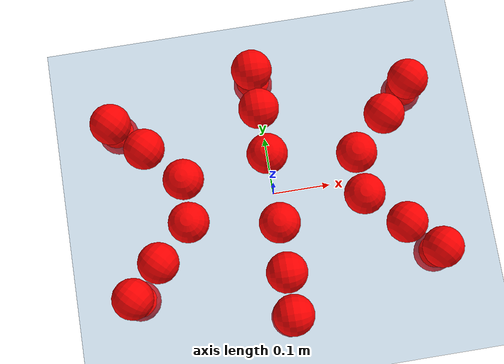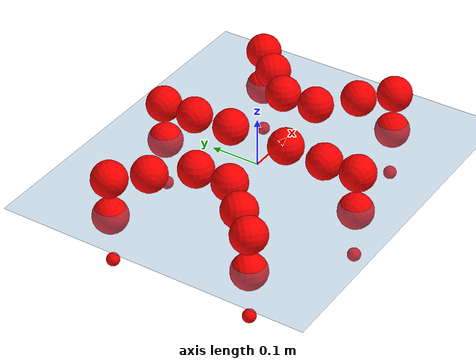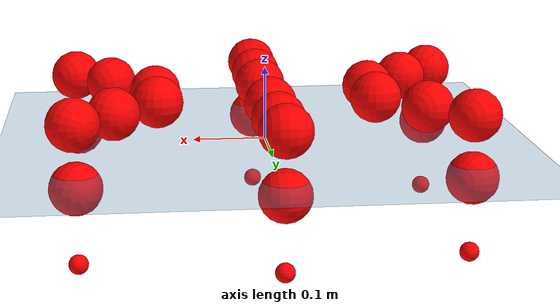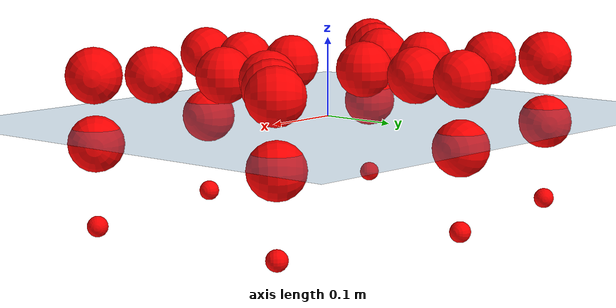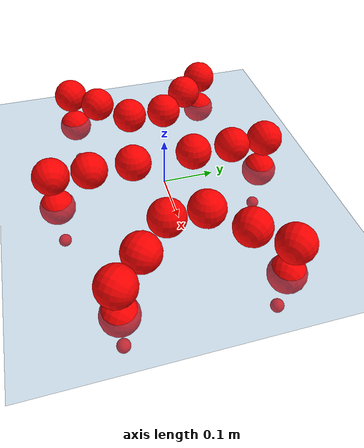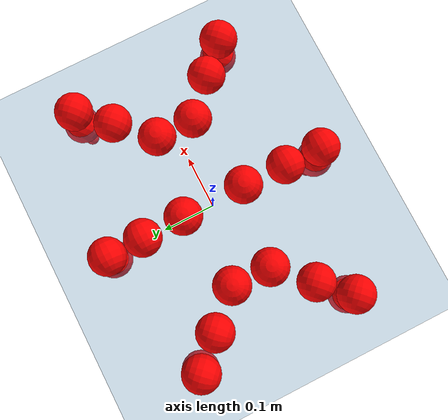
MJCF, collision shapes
<mujoco model="Golem">
  <compiler angle="radian" assetdir="assets" balanceinertia="true" inertiafromgeom="false"/>

  <option timestep="0.005" density="1.2" viscosity="2e-05"/>

  <size nkey="1"/>

  <visual>
    <quality shadowsize="8192"/>
    <map shadowclip="0.5"/>
  </visual>

  <default>
    <default class="/">
      <joint armature="0.01" damping="0.01" frictionloss="0.01"/>
      <geom contype="0" conaffinity="0" group="1" solref="-1000 -80"/>
      <site size="0.01 0.005 0.005" group="5"/>
      <general forcelimited="true" biastype="affine" gainprm="25" biasprm="0 -25 -0.5"/>
      <default class="visual">
        <geom type="mesh" group="2"/>
      </default>
      <default class="collision">
        <geom group="3"/>
      </default>
      <default class="foot">
        <geom size="0.01 0 0" condim="6" group="4" priority="1" solimp="0.015 1 0.01"/>
      </default>
      <default class="reward_collision_sphere">
        <geom group="5" rgba="1 0 0 1"/>
      </default>
    </default>
  </default>

  <asset>
    <texture type="skybox" colorspace="auto" name="//unnamed_texture_0" builtin="gradient" rgb1="0.95 0.95 0.95" rgb2="0.95 0.95 0.95" width="100" height="600"/>
    <texture type="2d" colorspace="auto" name="texplane" builtin="checker" rgb1="0.345 0.575 0.748" rgb2="0.345 0.575 0.748" markrgb="1 1 1" width="512" height="512"/>
    <material name="MatPlane" class="/" texture="texplane" texuniform="true" texrepeat="2 2" specular="0.9"/>
    <mesh name="body" class="/" file="body.stl" scale="0.001 0.001 0.001"/>
    <mesh name="coxa" class="/" file="coxa.stl" scale="0.001 0.001 0.001"/>
    <mesh name="femur" class="/" file="femur.stl" scale="0.001 0.001 0.001"/>
    <mesh name="tibia" class="/" file="tibia.stl" scale="0.001 0.001 0.001"/>
    <mesh name="tarsus" class="/" file="tarsus.stl" scale="0.001 0.001 0.001"/>
  </asset>

  <worldbody>
    <geom name="floor" class="/" size="100 100 0.125" type="plane" group="0" material="MatPlane"/>
    <light name="toplight_shadow" class="/" pos="0 0 5" dir="0.0990148 0.0990148 -0.990148" type="directional" ambient="0.04 0.04 0.04" diffuse="0.55 0.55 0.55" specular="0.12 0.12 0.12"/>
    <light name="toplight_fill" class="/" pos="0 0 5" dir="0.0990148 0.0990148 -0.990148" type="directional" castshadow="false" ambient="0.04 0.04 0.04" diffuse="0.3 0.3 0.3" specular="0.08 0.08 0.08"/>
    <body name="trunk" pos="0.000289483 2.53768e-05 -0.0011742" quat="1 0.000123453 -2.2184e-05 0.000459945">
      <inertial pos="0.000121862 -0.000173734 -0.0043492" quat="0.999988 0.000273345 0.00433237 -0.00217177" mass="2.51028" diaginertia="0.00776768 0.00136406 0.0102944"/>
      <joint name="//unnamed_joint_0" type="free"/>
      <geom name="//unnamed_geom_1" class="/" pos="0 0 0.0643094" quat="1 0 0 0" type="mesh" rgba="0.9 0.9 0.9 1" mesh="body"/>
      <site name="imu" class="/" pos="0.128246 -0.000465525 0.103483" size="0.00874238"/>
      <camera name="track" class="/" pos="0 -1.33757 0" quat="0.707107 0.707107 0 0" mode="trackcom"/>
      <camera name="ego_camera" class="/" pos="0.123382 0 0.100483" quat="-0.5 -0.5 0.5 0.5"/>
      <body name="coxa_RR" pos="-0.16964 -0.056367 0.0647993" quat="0.3833 9.24708e-05 0.000631619 -0.923624">
        <inertial pos="-0.00158793 0.000575612 0.00104748" quat="0.999994 -0.000946506 -0.00263343 0.00187918" mass="0.132511" diaginertia="0.00772902 0.00135124 0.0100734"/>
        <joint name="coxa_joint_RR" class="/" pos="0 0 0" axis="-2.08466e-05 2.29943e-05 -1" range="-3.11965 3.14409" armature="0.00899647" damping="0.00889292" frictionloss="0.00904525"/>
        <geom name="//unnamed_geom_2" class="/" type="mesh" rgba="0.2 0.2 0.2 1" mesh="coxa"/>
        <geom name="//unnamed_geom_3" class="reward_collision_sphere" size="0.0349695" pos="-0.0284728 0 0"/>
        <body name="femur_RR" pos="0.0552627 -0.000390857 -0.00049279" quat="0.499905 -0.499956 0.500307 0.499832">
          <inertial pos="-0.000420982 0.000768872 0.00106512" quat="1 -4.66876e-05 2.08199e-05 -6.19111e-05" mass="0.133533" diaginertia="0.00772001 0.00133918 0.0100615"/>
          <joint name="femur_joint_RR" class="/" pos="0 0 0" axis="-0.00190238 -0.00093703 -0.999998" range="-3.15081 3.13775" armature="0.00914059" damping="0.00459789" frictionloss="0.00904113"/>
          <geom name="//unnamed_geom_4" class="/" type="mesh" rgba="0.9 0.9 0.9 1" mesh="femur"/>
          <geom name="//unnamed_geom_5" class="reward_collision_sphere" size="0.0349695"/>
          <body name="tibia_RR" pos="0.000499506 -0.0719208 0.00139776" quat="1.8243e-05 1 -1.96858e-05 2.42993e-05">
            <inertial pos="0.000962167 0.00102645 -0.00115865" quat="0.999993 0.00113839 0.0014764 -0.00334042" mass="0.134558" diaginertia="0.00773514 0.0013478 0.0103866"/>
            <joint name="tibia_joint_RR" class="/" pos="0 0 0" axis="5.89677e-05 3.53523e-05 1" range="-3.13817 3.14162" armature="0.00886361" damping="0" frictionloss="0.00897073"/>
            <geom name="//unnamed_geom_6" class="/" type="mesh" rgba="0.2 0.2 0.2 1" mesh="tibia"/>
            <geom name="//unnamed_geom_7" class="reward_collision_sphere" size="0.0349695"/>
            <body name="tarsus_RR" pos="0.081217 -0.00130735 -0.000866439" quat="1 0.000265763 0.000282053 0.000367281">
              <inertial pos="0.0554504 -0.00101295 -0.000876686" quat="0.50019 0.499636 0.500031 0.500143" mass="0.130555" diaginertia="0.00771727 0.00133224 0.0101167"/>
              <joint name="tarsus_joint_RR" class="/" pos="0 0 0" axis="-0.00113079 0.00115016 0.999999" range="-3.14163 3.12919" armature="0.00882211" damping="0.000736363" frictionloss="0.00857292"/>
              <geom name="//unnamed_geom_8" class="/" type="mesh" rgba="0.9 0.9 0.9 1" mesh="tarsus"/>
              <geom name="foot_1" class="foot" size="0.00849706" pos="0.106298 0 0" quat="0 -0.707107 0 0.707107"/>
              <geom name="//unnamed_geom_10" class="reward_collision_sphere" size="0.0349695"/>
              <geom name="//unnamed_geom_11" class="reward_collision_sphere" size="0.0131136" pos="0.102027 0 0"/>
              <site name="foot_1" class="foot" pos="0.106298 0 0" quat="0 -0.707107 0 0.707107" size="0.00874238"/>
            </body>
          </body>
        </body>
      </body>
      <body name="coxa_RM" pos="0.000624962 -0.0898058 0.0650246" quat="0.707428 2.3513e-05 -8.7072e-05 -0.706786">
        <inertial pos="9.10741e-05 0.000664074 -0.00143434" quat="0.999996 -0.000154846 -0.00288919 0.000375033" mass="0.133634" diaginertia="0.00769381 0.00132462 0.0101248"/>
        <joint name="coxa_joint_RM" class="/" pos="0 0 0" axis="-0.000892711 -0.000297885 -1" range="-3.14107 3.12985" armature="0.00907079" damping="0.0116085" frictionloss="0.00850249"/>
        <geom name="//unnamed_geom_12" class="/" type="mesh" rgba="0.2 0.2 0.2 1" mesh="coxa"/>
        <geom name="//unnamed_geom_13" class="reward_collision_sphere" size="0.0349695" pos="-0.0284728 0 0"/>
        <body name="femur_RM" pos="0.0550876 -0.00176087 -0.00129461" quat="0.499636 -0.500391 0.499498 0.500475">
          <inertial pos="1.60421e-06 0.000285527 -0.000281827" quat="0.999978 0.00624025 -0.00217402 0.00093262" mass="0.13284" diaginertia="0.00779153 0.00135549 0.0102613"/>
          <joint name="femur_joint_RM" class="/" pos="0 0 0" axis="-0.00410364 0.000753533 -0.999991" range="-3.14995 3.14995" armature="0.00940419" damping="0.0149457" frictionloss="0.00878878"/>
          <geom name="//unnamed_geom_14" class="/" type="mesh" rgba="0.9 0.9 0.9 1" mesh="femur"/>
          <geom name="//unnamed_geom_15" class="reward_collision_sphere" size="0.0349695"/>
          <body name="tibia_RM" pos="-0.00164665 -0.071079 -0.000694818" quat="6.35651e-05 1 2.85546e-05 1.64325e-05">
            <inertial pos="0.000866924 -5.18552e-05 -0.000859719" quat="0.999998 0.00136381 -0.00125671 -0.000640574" mass="0.131076" diaginertia="0.00756231 0.00133015 0.0103007"/>
            <joint name="tibia_joint_RM" class="/" pos="0 0 0" axis="0.000342657 0.000641078 1" range="-3.14755 3.12775" armature="0.00855956" damping="0.00176998" frictionloss="0.0090965"/>
            <geom name="//unnamed_geom_16" class="/" type="mesh" rgba="0.2 0.2 0.2 1" mesh="tibia"/>
            <geom name="//unnamed_geom_17" class="reward_collision_sphere" size="0.0349695"/>
            <body name="tarsus_RM" pos="0.0838024 -0.000588966 0.00218432" quat="1 -0.000450911 8.30632e-05 3.1064e-05">
              <inertial pos="0.0579732 9.33237e-05 0.00126542" quat="0.500057 0.499913 0.500044 0.499986" mass="0.133687" diaginertia="0.00769822 0.00133993 0.0102517"/>
              <joint name="tarsus_joint_RM" class="/" pos="0 0 0" axis="-0.000649502 -0.00116474 0.999999" range="-3.13271 3.17634" armature="0.00871296" damping="0" frictionloss="0.00865016"/>
              <geom name="//unnamed_geom_18" class="/" type="mesh" rgba="0.9 0.9 0.9 1" mesh="tarsus"/>
              <geom name="foot_2" class="foot" size="0.00848158" pos="0.106298 0 0" quat="0 -0.707107 0 0.707107"/>
              <geom name="//unnamed_geom_20" class="reward_collision_sphere" size="0.0349695"/>
              <geom name="//unnamed_geom_21" class="reward_collision_sphere" size="0.0131136" pos="0.102027 0 0"/>
              <site name="foot_2" class="foot" pos="0.106298 0 0" quat="0 -0.707107 0 0.707107" size="0.00874238"/>
            </body>
          </body>
        </body>
      </body>
      <body name="coxa_RF" pos="0.169693 -0.0559602 0.0638512" quat="0.923788 -0.000289411 -0.00049736 -0.382904">
        <inertial pos="0.00120706 -0.000836799 4.93213e-05" quat="1 -0.000450249 -0.000113544 7.75151e-05" mass="0.133255" diaginertia="0.00778981 0.00133473 0.0102884"/>
        <joint name="coxa_joint_RF" class="/" pos="0 0 0" axis="0.000140479 0.000116089 -1" range="-3.13748 3.13099" armature="0.00874109" damping="0" frictionloss="0.00915485"/>
        <geom name="//unnamed_geom_22" class="/" type="mesh" rgba="0.2 0.2 0.2 1" mesh="coxa"/>
        <geom name="//unnamed_geom_23" class="reward_collision_sphere" size="0.0349695" pos="-0.0284728 0 0"/>
        <body name="femur_RF" pos="0.0564426 0.00183404 0.000995217" quat="0.500373 -0.499148 0.500425 0.500053">
          <inertial pos="0.000696144 -0.000682578 0.00110076" quat="0.999993 0.00194005 0.00318217 0.000142084" mass="0.135198" diaginertia="0.00780332 0.00136299 0.0103397"/>
          <joint name="femur_joint_RF" class="/" pos="0 0 0" axis="-0.00267828 -0.00124503 -0.999996" range="-3.15789 3.12226" armature="0.00852011" damping="0.0100705" frictionloss="0.00884316"/>
          <geom name="//unnamed_geom_24" class="/" type="mesh" rgba="0.9 0.9 0.9 1" mesh="femur"/>
          <geom name="//unnamed_geom_25" class="reward_collision_sphere" size="0.0349695"/>
          <body name="tibia_RF" pos="5.97659e-05 -0.0719807 0.000532286" quat="-6.6158e-07 1 1.52193e-08 -5.73922e-07">
            <inertial pos="-0.000480274 -0.0001362 3.25272e-05" quat="0.999988 -0.00331644 0.00344976 -0.00079888" mass="0.129082" diaginertia="0.00750987 0.00131087 0.0101567"/>
            <joint name="tibia_joint_RF" class="/" pos="0 0 0" axis="9.11767e-05 0.000139089 1" range="-3.13444 3.12751" armature="0.00868649" damping="0" frictionloss="0.00875942"/>
            <geom name="//unnamed_geom_26" class="/" type="mesh" rgba="0.2 0.2 0.2 1" mesh="tibia"/>
            <geom name="//unnamed_geom_27" class="reward_collision_sphere" size="0.0349695"/>
            <body name="tarsus_RF" pos="0.083287 -0.00141382 0.000312687" quat="1 0.000143313 -8.36898e-05 4.06495e-05">
              <inertial pos="0.0568538 0.000205225 -0.000213951" quat="0.500018 0.499944 0.500044 0.499993" mass="0.13352" diaginertia="0.00762024 0.00135649 0.0102393"/>
              <joint name="tarsus_joint_RF" class="/" pos="0 0 0" axis="0.000826957 0.00130965 0.999999" range="-3.13258 3.13846" armature="0.00878423" damping="0" frictionloss="0.00852613"/>
              <geom name="//unnamed_geom_28" class="/" type="mesh" rgba="0.9 0.9 0.9 1" mesh="tarsus"/>
              <geom name="foot_3" class="foot" size="0.00885343" pos="0.106298 0 0" quat="0 -0.707107 0 0.707107"/>
              <geom name="//unnamed_geom_30" class="reward_collision_sphere" size="0.0349695"/>
              <geom name="//unnamed_geom_31" class="reward_collision_sphere" size="0.0131136" pos="0.102027 0 0"/>
              <site name="foot_3" class="foot" pos="0.106298 0 0" quat="0 -0.707107 0 0.707107" size="0.00874238"/>
            </body>
          </body>
        </body>
      </body>
      <body name="coxa_LR" pos="-0.168059 0.0578808 0.0646239" quat="0.382731 1.32496e-06 -8.40782e-05 0.92386">
        <inertial pos="-2.21588e-05 0.00069414 0.000346939" quat="1 0.000799355 0.000423103 0.00023668" mass="0.132552" diaginertia="0.00755298 0.00131597 0.00997697"/>
        <joint name="coxa_joint_LR" class="/" pos="0 0 0" axis="0.00219065 -0.00222551 -0.999995" range="-3.13968 3.13017" armature="0.0083969" damping="0.00966485" frictionloss="0.00880155"/>
        <geom name="//unnamed_geom_32" class="/" type="mesh" rgba="0.2 0.2 0.2 1" mesh="coxa"/>
        <geom name="//unnamed_geom_33" class="reward_collision_sphere" size="0.0349695" pos="-0.0284728 0 0"/>
        <body name="femur_LR" pos="0.0569067 -0.0030335 0.000145351" quat="0.50002 -0.499984 0.500066 0.499931">
          <inertial pos="-0.000510116 0.000781358 -0.00171144" quat="0.99999 0.00299757 -0.00102978 -0.00312425" mass="0.130558" diaginertia="0.00760767 0.00131982 0.0101556"/>
          <joint name="femur_joint_LR" class="/" pos="0 0 0" axis="0.00761431 0.00224348 0.999968" range="-3.13485 3.13946" armature="0.00849149" damping="0.00450688" frictionloss="0.00851787"/>
          <geom name="//unnamed_geom_34" class="/" type="mesh" rgba="0.9 0.9 0.9 1" mesh="femur"/>
          <geom name="//unnamed_geom_35" class="reward_collision_sphere" size="0.0349695"/>
          <body name="tibia_LR" pos="0.000391721 -0.0729138 -0.00106134" quat="0.000154881 1 2.33945e-05 2.7814e-06">
            <inertial pos="-0.000786956 0.000974497 -0.000109053" quat="1 0.000134862 -0.000412536 7.44868e-05" mass="0.132484" diaginertia="0.00752656 0.00132842 0.0102271"/>
            <joint name="tibia_joint_LR" class="/" pos="0 0 0" axis="-0.00210424 -0.00774398 -0.999968" range="-3.13215 3.1009" armature="0.00954909" damping="0" frictionloss="0.00859711"/>
            <geom name="//unnamed_geom_36" class="/" type="mesh" rgba="0.2 0.2 0.2 1" mesh="tibia"/>
            <geom name="//unnamed_geom_37" class="reward_collision_sphere" size="0.0349695"/>
            <body name="tarsus_LR" pos="0.0833763 0.000883965 0.00212044" quat="1 -7.41538e-05 4.49665e-06 0.000166958">
              <inertial pos="0.0588676 -0.00016042 -0.00180708" quat="0.499909 0.500181 0.49966 0.50025" mass="0.134618" diaginertia="0.00769901 0.00133981 0.0103358"/>
              <joint name="tarsus_joint_LR" class="/" pos="0 0 0" axis="-0.000856604 -0.000585307 -0.999999" stiffness="0.000555204" range="-3.15201 3.15518" armature="0.00877117" damping="0.00115376" frictionloss="0.00874861"/>
              <geom name="//unnamed_geom_38" class="/" type="mesh" rgba="0.9 0.9 0.9 1" mesh="tarsus"/>
              <geom name="foot_4" class="foot" size="0.00859336" pos="0.106298 0 0" quat="0.707107 0 -0.707107 0"/>
              <geom name="//unnamed_geom_40" class="reward_collision_sphere" size="0.0349695"/>
              <geom name="//unnamed_geom_41" class="reward_collision_sphere" size="0.0131136" pos="0.102027 0 0"/>
              <site name="foot_4" class="foot" pos="0.106298 0 0" quat="0.707107 0 -0.707107 0" size="0.00874238"/>
            </body>
          </body>
        </body>
      </body>
      <body name="coxa_LM" pos="-0.0012614 0.0872287 0.06512" quat="0.707107 -1.81085e-06 -7.24625e-08 0.707107">
        <inertial pos="0.000224987 -0.00107011 0.00215708" quat="0.999989 -0.00228841 -0.00102762 -0.00401271" mass="0.132603" diaginertia="0.00778662 0.00133785 0.0102373"/>
        <joint name="coxa_joint_LM" class="/" pos="0 0 0" axis="-0.000479471 0.00239789 -0.999997" range="-3.14073 3.15491" armature="0.00807761" damping="0.00786928" frictionloss="0.00879445"/>
        <geom name="//unnamed_geom_42" class="/" type="mesh" rgba="0.2 0.2 0.2 1" mesh="coxa"/>
        <geom name="//unnamed_geom_43" class="reward_collision_sphere" size="0.0349695" pos="-0.0284728 0 0"/>
        <body name="femur_LM" pos="0.0520714 0.00171464 -0.00130007" quat="0.499988 -0.499903 0.499994 0.500115">
          <inertial pos="-0.00163884 -0.000839722 0.000450434" quat="1 0.000371245 3.33332e-05 -0.000332437" mass="0.130006" diaginertia="0.00764739 0.00130465 0.0100583"/>
          <joint name="femur_joint_LM" class="/" pos="0 0 0" axis="0.00239276 -0.00700024 0.999973" range="-3.14148 3.14254" armature="0.00861602" damping="0.007217" frictionloss="0.00884221"/>
          <geom name="//unnamed_geom_44" class="/" type="mesh" rgba="0.9 0.9 0.9 1" mesh="femur"/>
          <geom name="//unnamed_geom_45" class="reward_collision_sphere" size="0.0349695"/>
          <body name="tibia_LM" pos="-0.00103259 -0.0694195 0.00149747" quat="-0.000227694 1 0.000141574 -4.69313e-05">
            <inertial pos="-0.000155882 -0.000781892 -1.4329e-05" quat="0.999999 -0.00112168 -0.00028233 -0.000232941" mass="0.130278" diaginertia="0.00764132 0.00132817 0.0100987"/>
            <joint name="tibia_joint_LM" class="/" pos="0 0 0" axis="0.000194313 -0.000606912 -1" range="-3.12904 3.15632" armature="0.00872384" damping="0.00699308" frictionloss="0.00831528"/>
            <geom name="//unnamed_geom_46" class="/" type="mesh" rgba="0.2 0.2 0.2 1" mesh="tibia"/>
            <geom name="//unnamed_geom_47" class="reward_collision_sphere" size="0.0349695"/>
            <body name="tarsus_LM" pos="0.0835338 -0.000493579 0.000381257" quat="1 -3.60165e-05 5.20846e-05 -7.34048e-06">
              <inertial pos="0.058366 -0.000206214 0.000666341" quat="0.499962 0.499949 0.500076 0.500013" mass="0.133117" diaginertia="0.00777172 0.00134876 0.0102119"/>
              <joint name="tarsus_joint_LM" class="/" pos="0 0 0" axis="0.000937301 0.0038885 -0.999992" range="-3.14098 3.14322" armature="0.00860084" damping="0" frictionloss="0.00892344"/>
              <geom name="//unnamed_geom_48" class="/" type="mesh" rgba="0.9 0.9 0.9 1" mesh="tarsus"/>
              <geom name="foot_5" class="foot" size="0.00876876" pos="0.106298 0 0" quat="0.707107 0 -0.707107 0"/>
              <geom name="//unnamed_geom_50" class="reward_collision_sphere" size="0.0349695"/>
              <geom name="//unnamed_geom_51" class="reward_collision_sphere" size="0.0131136" pos="0.102027 0 0"/>
              <site name="foot_5" class="foot" pos="0.106298 0 0" quat="0.707107 0 -0.707107 0" size="0.00874238"/>
            </body>
          </body>
        </body>
      </body>
      <body name="coxa_LF" pos="0.168752 0.0563444 0.0645179" quat="0.923857 1.12707e-06 4.22698e-05 0.382738">
        <inertial pos="0.000357581 -0.000114825 -0.000691746" quat="0.999981 -0.00585468 -0.00168738 0.000128969" mass="0.133515" diaginertia="0.00788668 0.00133555 0.0102444"/>
        <joint name="coxa_joint_LF" class="/" pos="0 0 0" axis="-0.00133609 0.003206 -0.999994" range="-3.12937 3.12112" armature="0.00909017" damping="0.00613828" frictionloss="0.00860893"/>
        <geom name="//unnamed_geom_52" class="/" type="mesh" rgba="0.2 0.2 0.2 1" mesh="coxa"/>
        <geom name="//unnamed_geom_53" class="reward_collision_sphere" size="0.0349695" pos="-0.0284728 0 0"/>
        <body name="femur_LF" pos="0.0553378 0.000856361 -0.00050507" quat="0.499939 -0.500163 0.500051 0.499847">
          <inertial pos="-0.000551706 -0.000375224 0.000372959" quat="0.999989 -0.00255076 0.00344949 -0.00212979" mass="0.134639" diaginertia="0.00764979 0.00134127 0.0102554"/>
          <joint name="femur_joint_LF" class="/" pos="0 0 0" axis="0.00566969 0.0044792 0.999974" stiffness="0.000764474" range="-3.15879 3.14173" armature="0.00874433" damping="0" frictionloss="0.00871961"/>
          <geom name="//unnamed_geom_54" class="/" type="mesh" rgba="0.9 0.9 0.9 1" mesh="femur"/>
          <geom name="//unnamed_geom_55" class="reward_collision_sphere" size="0.0349695"/>
          <body name="tibia_LF" pos="-0.000446564 -0.0737185 0.00189306" quat="-2.38691e-05 1 -3.90389e-05 -3.09429e-05">
            <inertial pos="-0.000490389 -0.000189388 -0.000445569" quat="0.999956 0.0084329 0.00276992 -0.00299097" mass="0.135873" diaginertia="0.00772864 0.00134514 0.0103316"/>
            <joint name="tibia_joint_LF" class="/" pos="0 0 0" axis="0.000862481 -0.00432714 -0.99999" range="-3.13725 3.11952" armature="0.00866108" damping="0.0010552" frictionloss="0.00858688"/>
            <geom name="//unnamed_geom_56" class="/" type="mesh" rgba="0.2 0.2 0.2 1" mesh="tibia"/>
            <geom name="//unnamed_geom_57" class="reward_collision_sphere" size="0.0349695"/>
            <body name="tarsus_LF" pos="0.0834774 -0.000679747 -0.00088167" quat="1 3.53147e-05 -0.000126178 -0.00017925">
              <inertial pos="0.0578175 0.0013563 -0.000309276" quat="0.500677 0.50011 0.49991 0.499302" mass="0.129978" diaginertia="0.00758892 0.00131499 0.0100432"/>
              <joint name="tarsus_joint_LF" class="/" pos="0 0 0" axis="-0.00385521 0.000610676 -0.999992" range="-3.13216 3.12035" armature="0.00909891" damping="0.0114722" frictionloss="0.00862436"/>
              <geom name="//unnamed_geom_58" class="/" type="mesh" rgba="0.9 0.9 0.9 1" mesh="tarsus"/>
              <geom name="foot_6" class="foot" size="0.0086278" pos="0.106298 0 0" quat="0.707107 0 -0.707107 0"/>
              <geom name="//unnamed_geom_60" class="reward_collision_sphere" size="0.0349695"/>
              <geom name="//unnamed_geom_61" class="reward_collision_sphere" size="0.0131136" pos="0.102027 0 0"/>
              <site name="foot_6" class="foot" pos="0.106298 0 0" quat="0.707107 0 -0.707107 0" size="0.00874238"/>
            </body>
          </body>
        </body>
      </body>
    </body>
  </worldbody>

  <contact>
    <pair class="/" geom1="floor" geom2="foot_1" name="//unnamed_contact_0"/>
    <pair class="/" geom1="floor" geom2="foot_2" name="//unnamed_contact_1"/>
    <pair class="/" geom1="floor" geom2="foot_3" name="//unnamed_contact_2"/>
    <pair class="/" geom1="floor" geom2="foot_4" name="//unnamed_contact_3"/>
    <pair class="/" geom1="floor" geom2="foot_5" name="//unnamed_contact_4"/>
    <pair class="/" geom1="floor" geom2="foot_6" name="//unnamed_contact_5"/>
  </contact>

  <actuator>
    <general name="coxa_joint_RR" class="/" joint="coxa_joint_RR" forcerange="-6.32914 6.32914" gainprm="21.2022" biasprm="0 -21.2022 -0.452518"/>
    <general name="femur_joint_RR" class="/" joint="femur_joint_RR" forcerange="-6.2521 6.2521" gainprm="21.2022" biasprm="0 -21.2022 -0.452518"/>
    <general name="tibia_joint_RR" class="/" joint="tibia_joint_RR" forcerange="-6.21156 6.21156" gainprm="21.2022" biasprm="0 -21.2022 -0.452518"/>
    <general name="tarsus_joint_RR" class="/" joint="tarsus_joint_RR" forcerange="-6.15722 6.15722" gainprm="21.2022" biasprm="0 -21.2022 -0.452518"/>
    <general name="coxa_joint_RM" class="/" joint="coxa_joint_RM" forcerange="-6.83724 6.83724" gainprm="21.2022" biasprm="0 -21.2022 -0.452518"/>
    <general name="femur_joint_RM" class="/" joint="femur_joint_RM" forcerange="-6.37131 6.37131" gainprm="21.2022" biasprm="0 -21.2022 -0.452518"/>
    <general name="tibia_joint_RM" class="/" joint="tibia_joint_RM" forcerange="-6.15183 6.15183" gainprm="21.2022" biasprm="0 -21.2022 -0.452518"/>
    <general name="tarsus_joint_RM" class="/" joint="tarsus_joint_RM" forcerange="-6.20504 6.20504" gainprm="21.2022" biasprm="0 -21.2022 -0.452518"/>
    <general name="coxa_joint_RF" class="/" joint="coxa_joint_RF" forcerange="-6.48028 6.48028" gainprm="21.2022" biasprm="0 -21.2022 -0.452518"/>
    <general name="femur_joint_RF" class="/" joint="femur_joint_RF" forcerange="-6.36096 6.36096" gainprm="21.2022" biasprm="0 -21.2022 -0.452518"/>
    <general name="tibia_joint_RF" class="/" joint="tibia_joint_RF" forcerange="-6.45846 6.45846" gainprm="21.2022" biasprm="0 -21.2022 -0.452518"/>
    <general name="tarsus_joint_RF" class="/" joint="tarsus_joint_RF" forcerange="-6.36896 6.36896" gainprm="21.2022" biasprm="0 -21.2022 -0.452518"/>
    <general name="coxa_joint_LR" class="/" joint="coxa_joint_LR" forcerange="-6.66132 6.66132" gainprm="21.2022" biasprm="0 -21.2022 -0.452518"/>
    <general name="femur_joint_LR" class="/" joint="femur_joint_LR" forcerange="-6.3727 6.3727" gainprm="21.2022" biasprm="0 -21.2022 -0.452518"/>
    <general name="tibia_joint_LR" class="/" joint="tibia_joint_LR" forcerange="-6.37488 6.37488" gainprm="21.2022" biasprm="0 -21.2022 -0.452518"/>
    <general name="tarsus_joint_LR" class="/" joint="tarsus_joint_LR" forcerange="-6.71901 6.71901" gainprm="21.2022" biasprm="0 -21.2022 -0.452518"/>
    <general name="coxa_joint_LM" class="/" joint="coxa_joint_LM" forcerange="-6.23623 6.23623" gainprm="21.2022" biasprm="0 -21.2022 -0.452518"/>
    <general name="femur_joint_LM" class="/" joint="femur_joint_LM" forcerange="-6.2229 6.2229" gainprm="21.2022" biasprm="0 -21.2022 -0.452518"/>
    <general name="tibia_joint_LM" class="/" joint="tibia_joint_LM" forcerange="-6.62101 6.62101" gainprm="21.2022" biasprm="0 -21.2022 -0.452518"/>
    <general name="tarsus_joint_LM" class="/" joint="tarsus_joint_LM" forcerange="-6.81497 6.81497" gainprm="21.2022" biasprm="0 -21.2022 -0.452518"/>
    <general name="coxa_joint_LF" class="/" joint="coxa_joint_LF" forcerange="-6.41304 6.41304" gainprm="21.2022" biasprm="0 -21.2022 -0.452518"/>
    <general name="femur_joint_LF" class="/" joint="femur_joint_LF" forcerange="-6.44155 6.44155" gainprm="21.2022" biasprm="0 -21.2022 -0.452518"/>
    <general name="tibia_joint_LF" class="/" joint="tibia_joint_LF" forcerange="-6.5572 6.5572" gainprm="21.2022" biasprm="0 -21.2022 -0.452518"/>
    <general name="tarsus_joint_LF" class="/" joint="tarsus_joint_LF" forcerange="-6.61146 6.61146" gainprm="21.2022" biasprm="0 -21.2022 -0.452518"/>
  </actuator>

  <sensor>
    <gyro site="imu" name="imu_angular_velocity"/>
    <velocimeter site="imu" name="imu_linear_velocity"/>
    <framelinvel objtype="site" objname="foot_1" name="foot_1_global_linear_velocity"/>
    <framelinvel objtype="site" objname="foot_2" name="foot_2_global_linear_velocity"/>
    <framelinvel objtype="site" objname="foot_3" name="foot_3_global_linear_velocity"/>
    <framelinvel objtype="site" objname="foot_4" name="foot_4_global_linear_velocity"/>
    <framelinvel objtype="site" objname="foot_5" name="foot_5_global_linear_velocity"/>
    <framelinvel objtype="site" objname="foot_6" name="foot_6_global_linear_velocity"/>
  </sensor>

  <keyframe>
    <key name="home" qpos="0 0 0.1457 1 0 0 0 0 0 0 0 0 0 0 0 0 0 0 0 0 0 0 0 0 0 0 0 0 0 0 0"/>
  </keyframe>
</mujoco>
